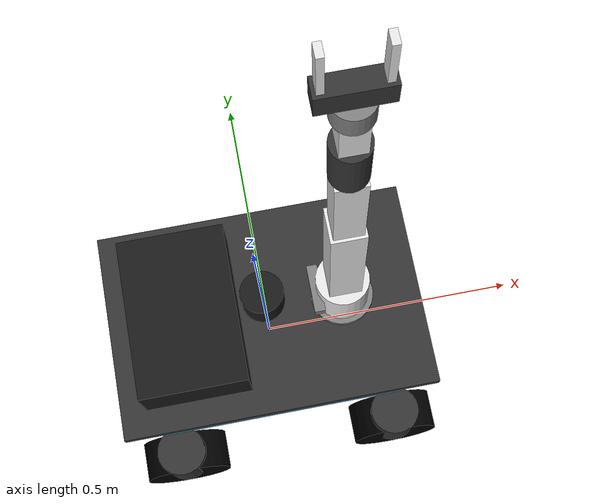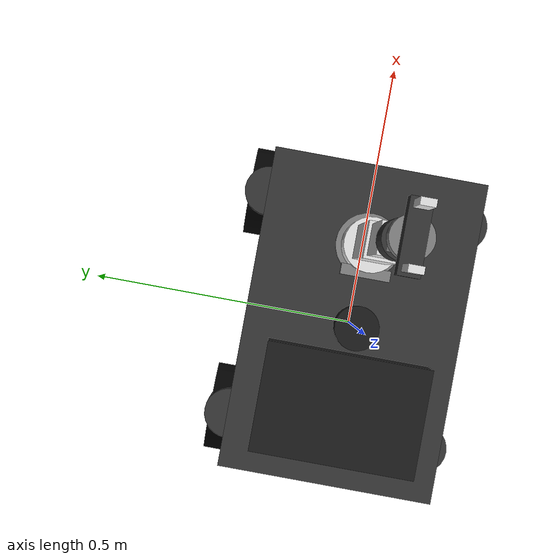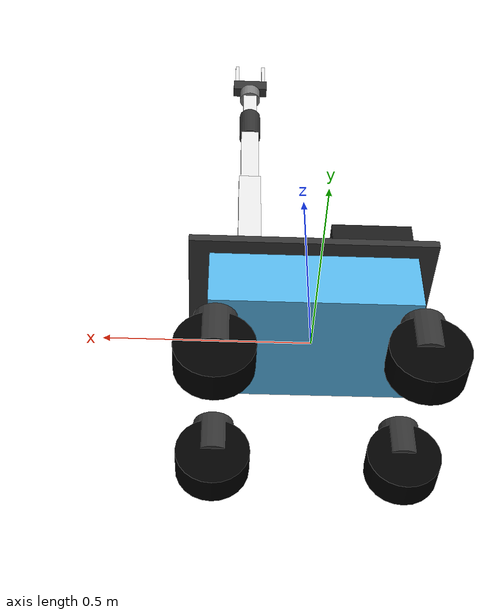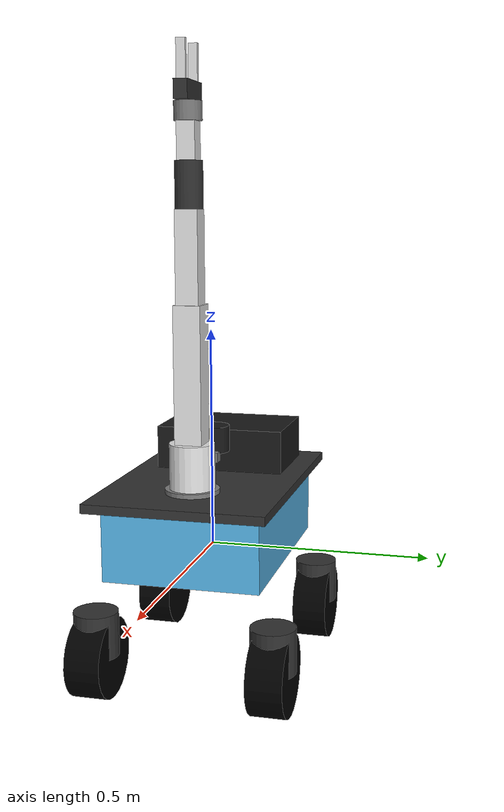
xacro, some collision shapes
<?xml version="1.0"?>
<robot name="ranger_mini" xmlns:xacro="http://ros.org/wiki/xacro">

  <!-- Include all modular components -->
  <xacro:include filename="$(find ranger_description)/urdf/ranger_mini_chassis.xacro"/>
  <xacro:include filename="$(find ranger_description)/urdf/ranger_mini_wheel.xacro"/>
  <xacro:include filename="$(find ranger_description)/urdf/ranger_mini_sensors.xacro"/>
  <xacro:include filename="$(find ranger_description)/urdf/top_platform.xacro"/>
  <xacro:include filename="$(find ranger_description)/urdf/piper_arm.xacro"/>
  <xacro:include filename="$(find ranger_description)/urdf/gazebo.xacro"/>

  <!-- Core Chassis Assembly -->
  <xacro:ranger_mini_chassis/>

  <!-- 4-Wheel Independent Steering Assembly -->
  <xacro:ranger_mini_wheel prefix="fl" offset_x="0.23" offset_y="0.2" offset_z="-0.1" steering_yaw="0.0" wheel_yaw="0.0"/>
  <xacro:ranger_mini_wheel prefix="fr" offset_x="0.23" offset_y="-0.2" offset_z="-0.1" steering_yaw="0.0" wheel_yaw="3.14159"/>
  <xacro:ranger_mini_wheel prefix="rl" offset_x="-0.23" offset_y="0.2" offset_z="-0.1" steering_yaw="0.0" wheel_yaw="0.0"/>
  <xacro:ranger_mini_wheel prefix="rr" offset_x="-0.23" offset_y="-0.2" offset_z="-0.1" steering_yaw="0.0" wheel_yaw="3.14159"/>

  <!-- Top Deck Platform -->
  <xacro:ranger_top_platform/>

  <!-- Sensor Assembly (Mounting shifted to top deck) -->
  <xacro:ranger_mini_sensors/>

  <!-- Piper 6-DOF Robotic Arm -->
  <xacro:piper_arm parent="top_deck_link">
    <!-- Mount at the front of the top deck -->
    <origin xyz="0.15 0 0.01" rpy="0 0 0"/>
  </xacro:piper_arm>

</robot>

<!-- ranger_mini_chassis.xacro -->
<robot xmlns:xacro="http://ros.org/wiki/xacro">

  <xacro:include filename="$(find ranger_description)/urdf/common_macros.xacro"/>

  <xacro:macro name="ranger_mini_chassis">

    <!-- Base Footprint: Projected center on the ground -->
    <link name="base_footprint"/>

    <joint name="base_footprint_joint" type="fixed">
      <origin xyz="0 0 0" rpy="0 0 0" />
      <parent link="base_footprint" />
      <child link="base_link" />
    </joint>

    <!-- Base Link: The physical robot chassis -->
    <link name="base_link">
      <visual>
        <origin xyz="0 0 0" rpy="0 0 0"/>
        <geometry>
          <mesh filename="package://ranger_description/meshes/ranger_base.dae" scale="1000 1000 1000"/>
        </geometry>
      </visual>
      <collision>
        <origin xyz="0 0 0.05" rpy="0 0 0"/>
        <geometry>
          <box size="0.5 0.35 0.15"/>
        </geometry>
      </collision>
      <!-- Industrial-grade inertia definition for AgileX Ranger Mini (approx 10kg empty) -->
      <xacro:box_inertia m="10.0" x="0.6" y="0.4" z="0.2"/>
    </link>

  </xacro:macro>

</robot>

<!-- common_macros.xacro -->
<robot xmlns:xacro="http://ros.org/wiki/xacro">

  <!-- Inertia macros for geometric shapes -->
  <xacro:macro name="box_inertia" params="m x y z">
    <inertial>
      <mass value="${m}"/>
      <inertia ixx="${m*(y*y+z*z)/12}" ixy="0" ixz="0"
               iyy="${m*(x*x+z*z)/12}" iyz="0"
               izz="${m*(x*x+y*y)/12}"/>
    </inertial>
  </xacro:macro>

  <xacro:macro name="cylinder_inertia" params="m r h">
    <inertial>
      <mass value="${m}"/>
      <inertia ixx="${m*(3*r*r+h*h)/12}" ixy="0" ixz="0"
               iyy="${m*(3*r*r+h*h)/12}" iyz="0"
               izz="${m*r*r/2}"/>
    </inertial>
  </xacro:macro>

  <xacro:macro name="sphere_inertia" params="m r">
    <inertial>
      <mass value="${m}"/>
      <inertia ixx="${2*m*r*r/5}" ixy="0" ixz="0"
               iyy="${2*m*r*r/5}" iyz="0"
               izz="${2*m*r*r/5}"/>
    </inertial>
  </xacro:macro>

</robot>

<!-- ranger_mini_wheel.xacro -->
<robot xmlns:xacro="http://ros.org/wiki/xacro">

  <xacro:include filename="$(find ranger_description)/urdf/common_macros.xacro"/>

  <!-- Macro for a single wheel assembly (steering column + rolling wheel) -->
  <xacro:macro name="ranger_mini_wheel" params="prefix offset_x offset_y offset_z steering_yaw wheel_yaw">

    <!-- Steering Link -->
    <link name="${prefix}_steering_link">
      <visual>
        <origin xyz="0 0 -0.05" rpy="0 0 0"/>
        <geometry>
          <cylinder radius="0.05" length="0.1"/>
        </geometry>
        <material name="dark_grey"><color rgba="0.2 0.2 0.2 1.0"/></material>
      </visual>
      <collision>
        <origin xyz="0 0 -0.05" rpy="0 0 0"/>
        <geometry>
          <cylinder radius="0.05" length="0.1"/>
        </geometry>
      </collision>
      <xacro:cylinder_inertia m="2.0" r="0.05" h="0.1"/>
    </link>

    <!-- Steering Joint -->
    <joint name="${prefix}_steering_joint" type="revolute">
      <origin xyz="${offset_x} ${offset_y} ${offset_z}" rpy="0 0 ${steering_yaw}" />
      <parent link="base_link" />
      <child link="${prefix}_steering_link" />
      <axis xyz="0 0 1" />
      <!-- High torque capacity for heavy lifting -->
      <limit lower="-1.5707" upper="1.5707" effort="100.0" velocity="2.0"/>
      <dynamics damping="0.1" friction="0.1"/>
    </joint>

    <!-- Wheel Link -->
    <link name="${prefix}_wheel_link">
      <visual>
        <origin xyz="0 0 -0.005" rpy="1.57 0 0"/>
        <geometry>
          <cylinder radius="0.09" length="0.08"/>
        </geometry>
        <material name="black"><color rgba="0.0 0.0 0.0 1.0"/></material>
      </visual>
      <collision>
        <origin xyz="0 0 -0.005" rpy="1.57 0 0"/>
        <geometry>
          <cylinder radius="0.09" length="0.08"/>
        </geometry>
      </collision>
      <xacro:cylinder_inertia m="8.0" r="0.09" h="0.08"/>
    </link>

    <!-- Wheel Joint -->
    <joint name="${prefix}_wheel_joint" type="continuous">
      <origin xyz="0 0 -0.1" rpy="0 0 ${wheel_yaw}" />
      <parent link="${prefix}_steering_link" />
      <child link="${prefix}_wheel_link" />
      <axis xyz="0 1 0" />
      <limit effort="50.0" velocity="10.0"/>
      <dynamics damping="0.05" friction="0.05"/>
    </joint>

    <gazebo reference="${prefix}_steering_link">
      <material>Gazebo/DarkGrey</material>
    </gazebo>

    <gazebo reference="${prefix}_wheel_link">
      <material>Gazebo/Black</material>
      <mu1>0.8</mu1>
      <mu2>0.8</mu2>
    </gazebo>

  </xacro:macro>

</robot>

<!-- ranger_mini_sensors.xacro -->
<robot xmlns:xacro="http://ros.org/wiki/xacro">

  <xacro:macro name="ranger_mini_sensors">

    <!-- Livox Mid-360 LiDAR -->
    <link name="lidar_link">
      <visual>
        <geometry>
          <cylinder radius="0.04" length="0.06"/>
        </geometry>
        <material name="black"><color rgba="0.1 0.1 0.1 1"/></material>
      </visual>
      <collision>
        <geometry>
          <cylinder radius="0.04" length="0.06"/>
        </geometry>
      </collision>
    </link>

    <joint name="lidar_joint" type="fixed">
      <parent link="top_deck_link"/>
      <child link="lidar_link"/>
      <origin xyz="0.0 0 0.1" rpy="0 0 0"/>
    </joint>

    <!-- IMU -->
    <link name="imu_link"/>
    <joint name="imu_joint" type="fixed">
      <parent link="base_link"/>
      <child link="imu_link"/>
      <origin xyz="0 0 0.0" rpy="0 0 0"/>
    </joint>

    <!-- RGB-D Camera (Intel RealSense) -->
    <link name="camera_link">
      <visual>
        <geometry><box size="0.02 0.09 0.02"/></geometry>
        <material name="grey"><color rgba="0.5 0.5 0.5 1.0"/></material>
      </visual>
      <collision>
        <geometry><box size="0.02 0.09 0.02"/></geometry>
      </collision>
    </link>
    <joint name="camera_joint" type="fixed">
      <parent link="top_deck_link"/>
      <child link="camera_link"/>
      <!-- Mounted front of the electronics enclosure, looking forward -->
      <origin xyz="0.1 0.0 0.08" rpy="0 0 0"/>
    </joint>

    <!-- Camera Optical Frame (ROS Standard) -->
    <link name="camera_optical_link"/>
    <joint name="camera_optical_joint" type="fixed">
      <parent link="camera_link"/>
      <child link="camera_optical_link"/>
      <!-- Z forward, X right, Y down -->
      <origin xyz="0 0 0" rpy="-1.5707963 0 -1.5707963"/>
    </joint>

    <!-- GPS Antenna -->
    <link name="gps_link"/>
    <joint name="gps_joint" type="fixed">
      <parent link="base_link"/>
      <child link="gps_link"/>
      <origin xyz="-0.1 0.0 0.2" rpy="0 0 0"/>
    </joint>

  </xacro:macro>

</robot>

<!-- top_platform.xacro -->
<robot xmlns:xacro="http://ros.org/wiki/xacro">
  <xacro:macro name="ranger_top_platform">
    <!-- Aluminum Extrusion Frame / Top Deck -->
    <link name="top_deck_link">
      <visual>
        <geometry>
          <box size="0.6 0.4 0.02"/>
        </geometry>
        <material name="dark_grey">
          <color rgba="0.2 0.2 0.2 1.0"/>
        </material>
      </visual>
      <collision>
        <geometry>
          <box size="0.6 0.4 0.02"/>
        </geometry>
      </collision>
      <inertial>
        <mass value="3.0"/>
        <origin xyz="0 0 0" rpy="0 0 0"/>
        <inertia ixx="0.04" ixy="0.0" ixz="0.0" iyy="0.09" iyz="0.0" izz="0.13"/>
      </inertial>
    </link>

    <joint name="top_deck_joint" type="fixed">
      <parent link="base_link"/>
      <child link="top_deck_link"/>
      <!-- Mounted 15cm above the base_link center -->
      <origin xyz="0 0 0.15" rpy="0 0 0"/>
    </joint>

    <!-- Electronics / Compute Enclosure -->
    <link name="electronics_enclosure">
      <visual>
        <geometry>
          <box size="0.2 0.3 0.1"/>
        </geometry>
        <material name="black">
          <color rgba="0.1 0.1 0.1 1.0"/>
        </material>
      </visual>
      <collision>
        <geometry>
          <box size="0.2 0.3 0.1"/>
        </geometry>
      </collision>
      <inertial>
        <mass value="1.5"/>
        <inertia ixx="0.01" ixy="0.0" ixz="0.0" iyy="0.01" iyz="0.0" izz="0.01"/>
      </inertial>
    </link>

    <joint name="electronics_joint" type="fixed">
      <parent link="top_deck_link"/>
      <child link="electronics_enclosure"/>
      <!-- Placed at the rear of the top deck -->
      <origin xyz="-0.15 0 0.06" rpy="0 0 0"/>
    </joint>
  </xacro:macro>
</robot>

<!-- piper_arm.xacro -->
<robot xmlns:xacro="http://ros.org/wiki/xacro">

  <xacro:macro name="piper_arm" params="parent *origin">

    <!-- Arm Mount Plate -->
    <link name="piper_mount">
      <visual>
        <geometry>
          <cylinder radius="0.06" length="0.02"/>
        </geometry>
        <material name="grey"><color rgba="0.5 0.5 0.5 1.0"/></material>
      </visual>
      <collision>
        <geometry>
          <cylinder radius="0.06" length="0.02"/>
        </geometry>
      </collision>
      <inertial>
        <mass value="0.5"/>
        <inertia ixx="0.001" ixy="0" ixz="0" iyy="0.001" iyz="0" izz="0.001"/>
      </inertial>
    </link>

    <joint name="piper_mount_joint" type="fixed">
      <parent link="${parent}"/>
      <child link="piper_mount"/>
      <xacro:insert_block name="origin"/>
    </joint>

    <!-- Link 1 (Base Yaw) -->
    <link name="piper_link1">
      <visual>
        <origin xyz="0 0 0.05" rpy="0 0 0"/>
        <geometry><cylinder radius="0.05" length="0.1"/></geometry>
        <material name="white"><color rgba="0.9 0.9 0.9 1.0"/></material>
      </visual>
      <collision>
        <origin xyz="0 0 0.05" rpy="0 0 0"/>
        <geometry><cylinder radius="0.05" length="0.1"/></geometry>
      </collision>
      <inertial>
        <mass value="1.0"/>
        <inertia ixx="0.002" ixy="0" ixz="0" iyy="0.002" iyz="0" izz="0.001"/>
      </inertial>
    </link>

    <joint name="piper_joint1" type="revolute">
      <parent link="piper_mount"/>
      <child link="piper_link1"/>
      <origin xyz="0 0 0.01" rpy="0 0 0"/>
      <axis xyz="0 0 1"/>
      <limit lower="-3.14" upper="3.14" effort="100.0" velocity="1.0"/>
    </joint>

    <!-- Link 2 (Shoulder Pitch) -->
    <link name="piper_link2">
      <visual>
        <origin xyz="0 0 0.15" rpy="0 0 0"/>
        <geometry><box size="0.06 0.06 0.3"/></geometry>
        <material name="white"/>
      </visual>
      <collision>
        <origin xyz="0 0 0.15" rpy="0 0 0"/>
        <geometry><box size="0.06 0.06 0.3"/></geometry>
      </collision>
      <inertial>
        <mass value="1.2"/>
        <inertia ixx="0.01" ixy="0" ixz="0" iyy="0.01" iyz="0" izz="0.002"/>
      </inertial>
    </link>

    <joint name="piper_joint2" type="revolute">
      <parent link="piper_link1"/>
      <child link="piper_link2"/>
      <origin xyz="0 0 0.1" rpy="0 0 0"/>
      <axis xyz="0 1 0"/>
      <limit lower="-1.57" upper="1.57" effort="100.0" velocity="1.0"/>
    </joint>

    <!-- Link 3 (Elbow Pitch) -->
    <link name="piper_link3">
      <visual>
        <origin xyz="0 0 0.1" rpy="0 0 0"/>
        <geometry><box size="0.05 0.05 0.2"/></geometry>
        <material name="white"/>
      </visual>
      <collision>
        <origin xyz="0 0 0.1" rpy="0 0 0"/>
        <geometry><box size="0.05 0.05 0.2"/></geometry>
      </collision>
      <inertial>
        <mass value="0.8"/>
        <inertia ixx="0.005" ixy="0" ixz="0" iyy="0.005" iyz="0" izz="0.001"/>
      </inertial>
    </link>

    <joint name="piper_joint3" type="revolute">
      <parent link="piper_link2"/>
      <child link="piper_link3"/>
      <origin xyz="0 0 0.3" rpy="0 0 0"/>
      <axis xyz="0 1 0"/>
      <limit lower="-2.0" upper="2.0" effort="80.0" velocity="1.5"/>
    </joint>

    <!-- Link 4 (Wrist Roll) -->
    <link name="piper_link4">
      <visual>
        <origin xyz="0 0 0.05" rpy="0 0 0"/>
        <geometry><cylinder radius="0.03" length="0.1"/></geometry>
        <material name="dark_grey"/>
      </visual>
      <collision>
        <origin xyz="0 0 0.05" rpy="0 0 0"/>
        <geometry><cylinder radius="0.03" length="0.1"/></geometry>
      </collision>
      <inertial>
        <mass value="0.4"/>
        <inertia ixx="0.001" ixy="0" ixz="0" iyy="0.001" iyz="0" izz="0.0005"/>
      </inertial>
    </link>

    <joint name="piper_joint4" type="revolute">
      <parent link="piper_link3"/>
      <child link="piper_link4"/>
      <origin xyz="0 0 0.2" rpy="0 0 0"/>
      <axis xyz="0 0 1"/>
      <limit lower="-3.14" upper="3.14" effort="40.0" velocity="2.0"/>
    </joint>

    <!-- Link 5 (Wrist Pitch) -->
    <link name="piper_link5">
      <visual>
        <origin xyz="0 0 0.04" rpy="0 0 0"/>
        <geometry><box size="0.04 0.04 0.08"/></geometry>
        <material name="white"/>
      </visual>
      <collision>
        <origin xyz="0 0 0.04" rpy="0 0 0"/>
        <geometry><box size="0.04 0.04 0.08"/></geometry>
      </collision>
      <inertial>
        <mass value="0.3"/>
        <inertia ixx="0.0005" ixy="0" ixz="0" iyy="0.0005" iyz="0" izz="0.0002"/>
      </inertial>
    </link>

    <joint name="piper_joint5" type="revolute">
      <parent link="piper_link4"/>
      <child link="piper_link5"/>
      <origin xyz="0 0 0.1" rpy="0 0 0"/>
      <axis xyz="0 1 0"/>
      <limit lower="-1.57" upper="1.57" effort="40.0" velocity="2.0"/>
    </joint>

    <!-- Link 6 (Wrist Yaw / End Effector Mount) -->
    <link name="piper_link6">
      <visual>
        <origin xyz="0 0 0.02" rpy="0 0 0"/>
        <geometry><cylinder radius="0.03" length="0.04"/></geometry>
        <material name="grey"/>
      </visual>
      <collision>
        <origin xyz="0 0 0.02" rpy="0 0 0"/>
        <geometry><cylinder radius="0.03" length="0.04"/></geometry>
      </collision>
      <inertial>
        <mass value="0.2"/>
        <inertia ixx="0.0001" ixy="0" ixz="0" iyy="0.0001" iyz="0" izz="0.0001"/>
      </inertial>
    </link>

    <joint name="piper_joint6" type="revolute">
      <parent link="piper_link5"/>
      <child link="piper_link6"/>
      <origin xyz="0 0 0.08" rpy="0 0 0"/>
      <axis xyz="0 0 1"/>
      <limit lower="-3.14" upper="3.14" effort="20.0" velocity="2.0"/>
    </joint>

    <!-- Gripper Base -->
    <link name="piper_gripper_base">
      <visual>
        <origin xyz="0 0 0.02" rpy="0 0 0"/>
        <geometry><box size="0.1 0.03 0.04"/></geometry>
        <material name="dark_grey"/>
      </visual>
      <collision>
        <origin xyz="0 0 0.02" rpy="0 0 0"/>
        <geometry><box size="0.1 0.03 0.04"/></geometry>
      </collision>
      <inertial>
        <mass value="0.2"/>
        <inertia ixx="0.0001" ixy="0" ixz="0" iyy="0.0001" iyz="0" izz="0.0001"/>
      </inertial>
    </link>

    <joint name="piper_gripper_joint" type="fixed">
      <parent link="piper_link6"/>
      <child link="piper_gripper_base"/>
      <origin xyz="0 0 0.04" rpy="0 0 0"/>
    </joint>

    <!-- Gripper Left Finger -->
    <link name="piper_finger_left">
      <visual>
        <origin xyz="0 0 0.04" rpy="0 0 0"/>
        <geometry><box size="0.01 0.02 0.08"/></geometry>
        <material name="white"/>
      </visual>
      <collision>
        <origin xyz="0 0 0.04" rpy="0 0 0"/>
        <geometry><box size="0.01 0.02 0.08"/></geometry>
      </collision>
      <inertial>
        <mass value="0.05"/>
        <inertia ixx="0.00001" ixy="0" ixz="0" iyy="0.00001" iyz="0" izz="0.00001"/>
      </inertial>
    </link>

    <joint name="piper_finger_left_joint" type="prismatic">
      <parent link="piper_gripper_base"/>
      <child link="piper_finger_left"/>
      <origin xyz="0.04 0 0.04" rpy="0 0 0"/>
      <axis xyz="-1 0 0"/>
      <limit lower="0.0" upper="0.03" effort="50.0" velocity="0.1"/>
    </joint>

    <!-- Gripper Right Finger -->
    <link name="piper_finger_right">
      <visual>
        <origin xyz="0 0 0.04" rpy="0 0 0"/>
        <geometry><box size="0.01 0.02 0.08"/></geometry>
        <material name="white"/>
      </visual>
      <collision>
        <origin xyz="0 0 0.04" rpy="0 0 0"/>
        <geometry><box size="0.01 0.02 0.08"/></geometry>
      </collision>
      <inertial>
        <mass value="0.05"/>
        <inertia ixx="0.00001" ixy="0" ixz="0" iyy="0.00001" iyz="0" izz="0.00001"/>
      </inertial>
    </link>

    <joint name="piper_finger_right_joint" type="prismatic">
      <parent link="piper_gripper_base"/>
      <child link="piper_finger_right"/>
      <origin xyz="-0.04 0 0.04" rpy="0 0 0"/>
      <axis xyz="1 0 0"/>
      <limit lower="0.0" upper="0.03" effort="50.0" velocity="0.1"/>
      <mimic joint="piper_finger_left_joint" multiplier="1.0"/>
    </joint>

    <!-- End Effector Optical Frame (for Grasping calculations) -->
    <link name="piper_end_effector"/>
    <joint name="piper_ee_joint" type="fixed">
      <parent link="piper_gripper_base"/>
      <child link="piper_end_effector"/>
      <origin xyz="0 0 0.08" rpy="0 0 0"/>
    </joint>

  </xacro:macro>
</robot>
